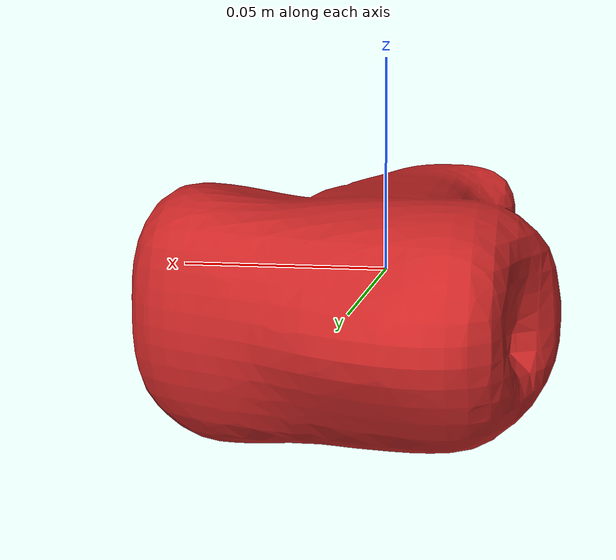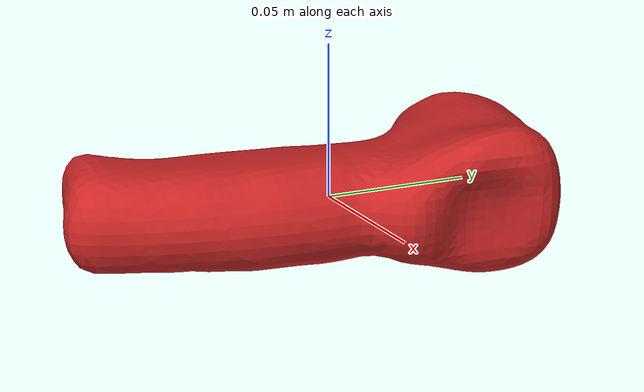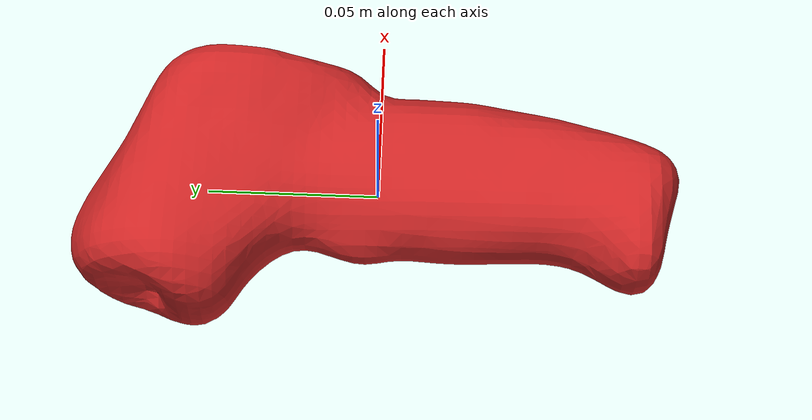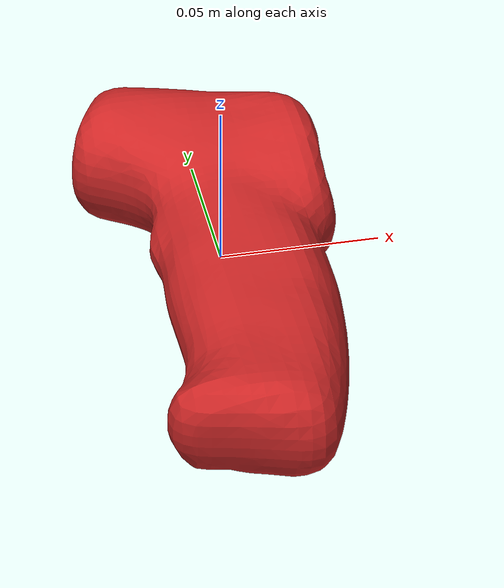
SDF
<sdf version='1.4'>
  <model name='thermometer_model'>
    <link name='thermometer'>
      <pose>0 0 0 0 0 0</pose>
      <inertial>
        <pose>0 0.0 0 0 0 0</pose>
        <mass>9.07</mass>
        <inertia>
          <ixx>1</ixx>
          <ixy>0</ixy>
          <ixz>0</ixz>
          <iyy>1</iyy>
          <iyz>0</iyz>
          <izz>1</izz>
        </inertia>
      </inertial>
      <collision name='thermometer_collision'>
        <pose>0 0 0 0 0 0</pose>
        <geometry>
          <mesh>
            <scale>1 1 1</scale>
            <uri>model://thermometer/meshes/thermometer.dae</uri>
          </mesh>
        </geometry>
        <surface>
          <contact>
            <ode/>
          </contact>
          <friction>
            <ode/>
          </friction>
        </surface>
      </collision>
      <visual name='thermometer_visual'>
        <pose>0 0 0 0 0 0 </pose>
        <geometry>
          <mesh>
            <scale>1 1 1</scale>
            <uri>model://thermometer/meshes/thermometer.dae</uri>
          </mesh>
        </geometry>
        <material>
          <script>
            <name>Gazebo/Red</name>
            <uri>__default__</uri>
          </script>
        </material>
      </visual>
      <gravity>1</gravity>
      <velocity_decay>
        <linear>0</linear>
        <angular>0</angular>
      </velocity_decay>
      <self_collide>0</self_collide>
    </link>
  </model>
</sdf>
